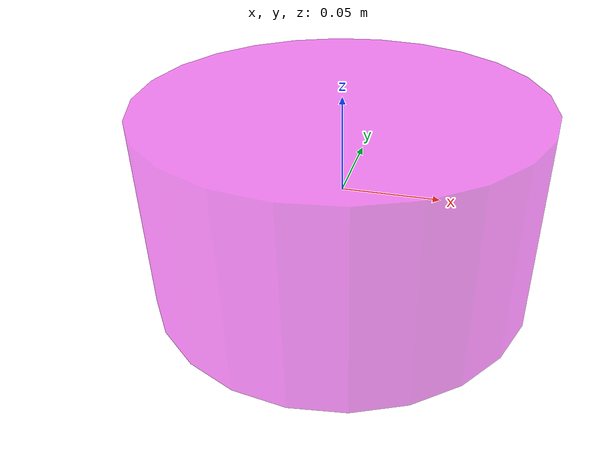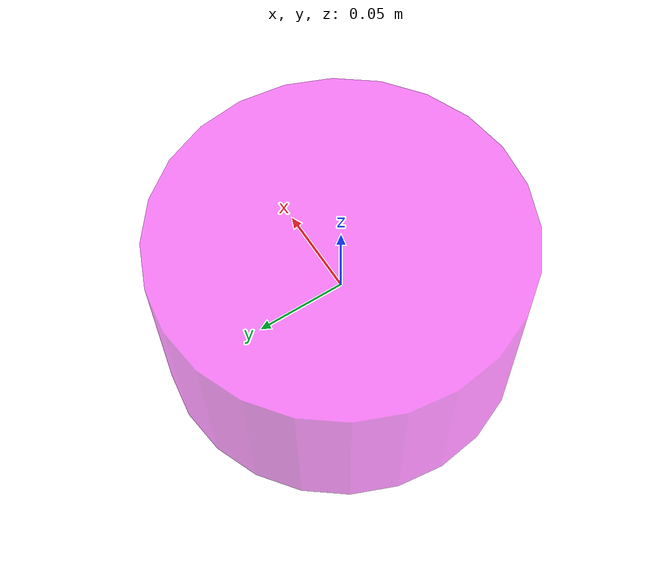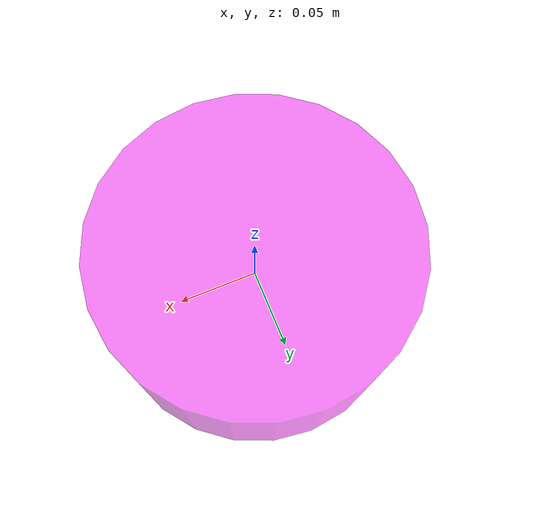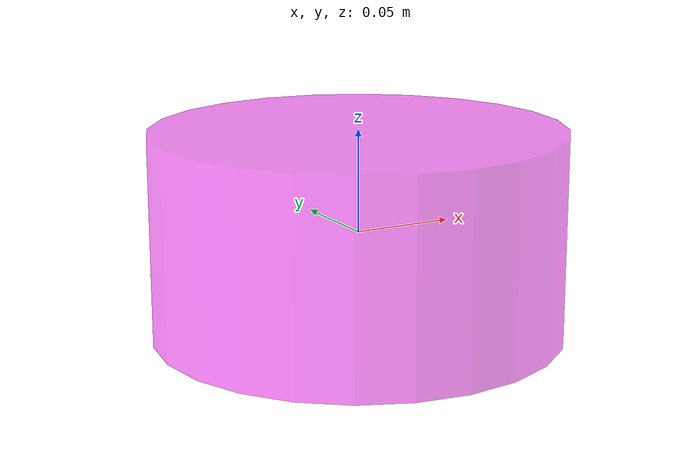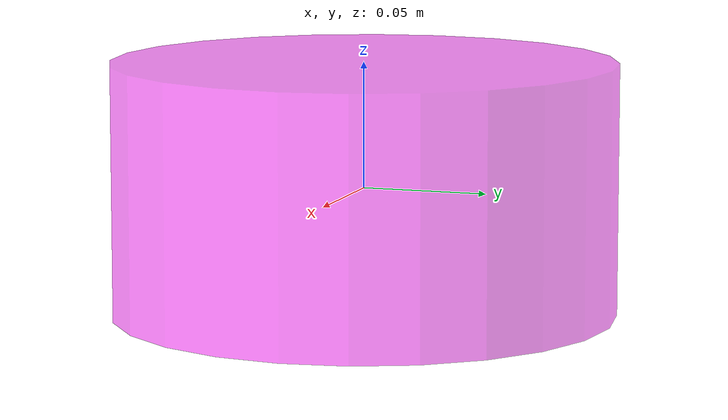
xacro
<?xml version="1.0"?>
<robot xmlns:xacro="http://www.ros.org/wiki/xacro" name="first_robot">
    <xacro:macro name="base_link" params="length radius">
        <!--机器人身体部分-->
        <link name="base_link">
            <!--部件的外观描述-->
            <visual>
            <!--沿着自己的几何中心点的平移和旋转-->
                <origin xyz="0.0 0.0 0.0" rpy="0.0 0.0 0.0"/>
                <geometry>
                <!--圆柱体-->
                    <cylinder radius="${radius}" length="${length}"/>
                </geometry>
                <material name="white">
                    <color rgba="1.0 0.0 1.0 0.5" />
                </material>
            </visual>
        </link>
    </xacro:macro>

    <xacro:macro name="imu_link" params="length imu_name xyz">
        <!--机器人的IMU部件-->
        <link name="${imu_name}_link">
            <visual>
                <origin xyz="0.0 0.0 0.0" rpy="0.0 0.0 0.0"/>

                <geometry>
                    <box size="${length} ${length} ${length}"/>
                </geometry>

                <material name="black">
                    <color rgba="1.0 0.0 0.0 0.5"/>
                </material>

            </visual>
        </link>

        <!--机器人的关节-->
        <joint name="${imu_name}_joint" type="fixed">
            <parent link="base_link"/>
            <child link="${imu_name}_link"/>
            <origin xyz="${xyz}" rpy="0.0 0.0 0.0"/>
        </joint>

    </xacro:macro>

    <xacro:base_link  length="0.1" radius="0.1"/>
    <xacro:imu_link  length="0.02" imu_name="imu1" xyz="0 0.0 0.01"/>
    <xacro:imu_link  length="0.02" imu_name="imu2" xyz="0 0.0 -0.01"/>
</robot>
